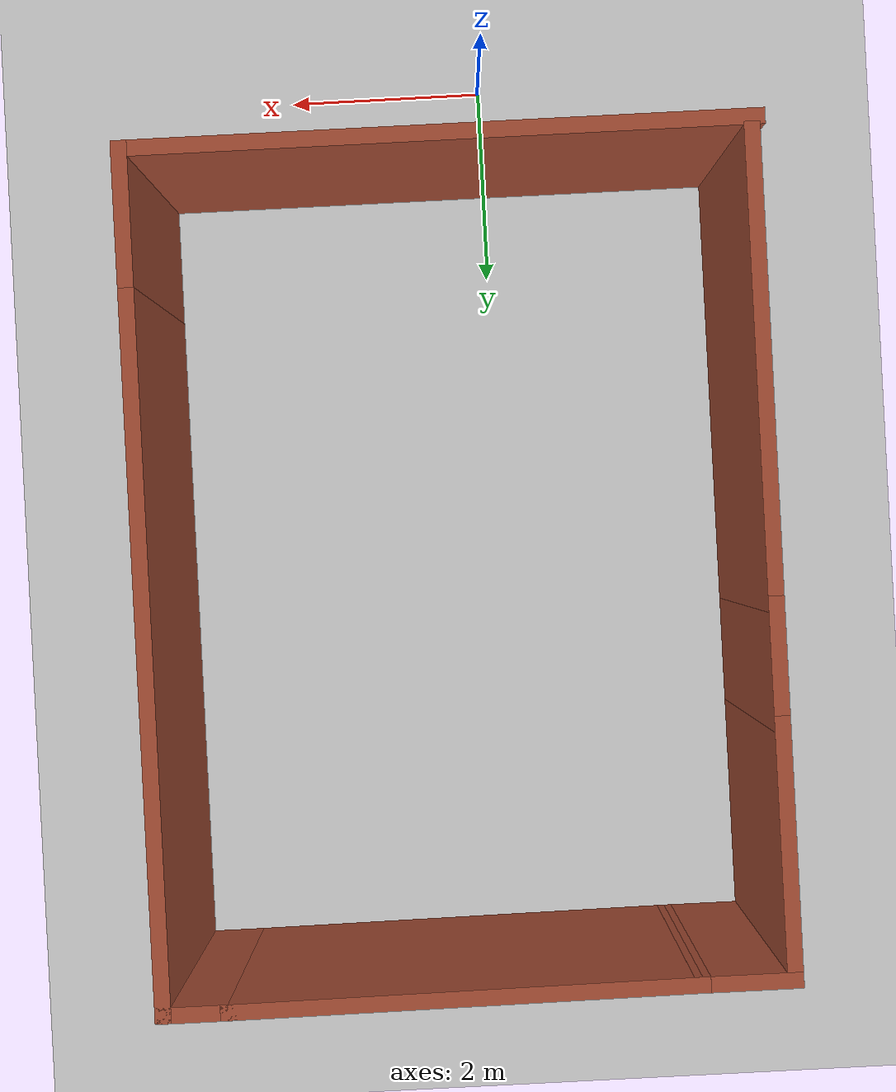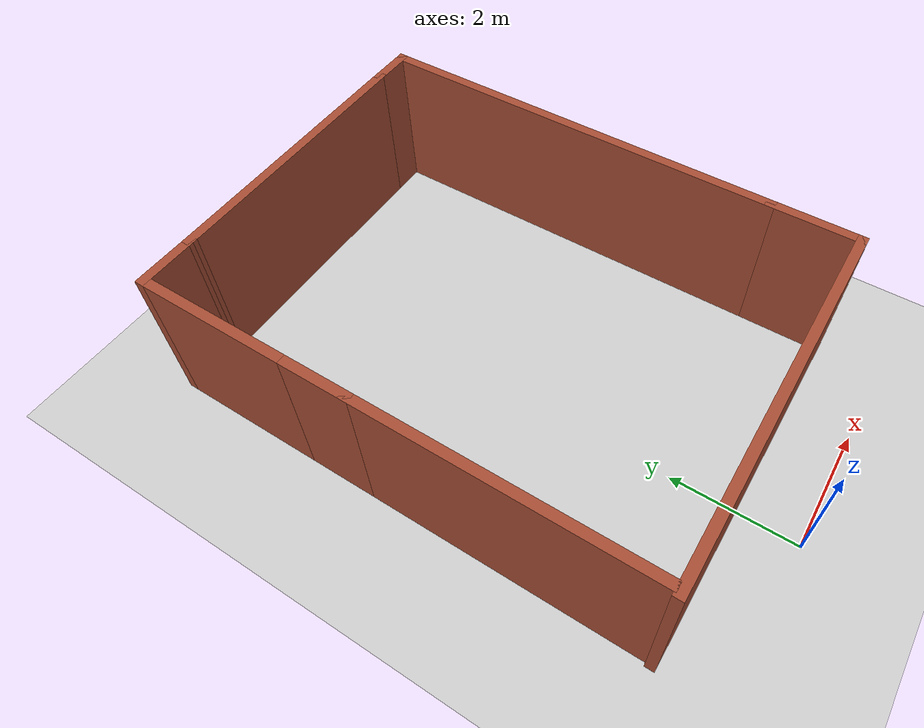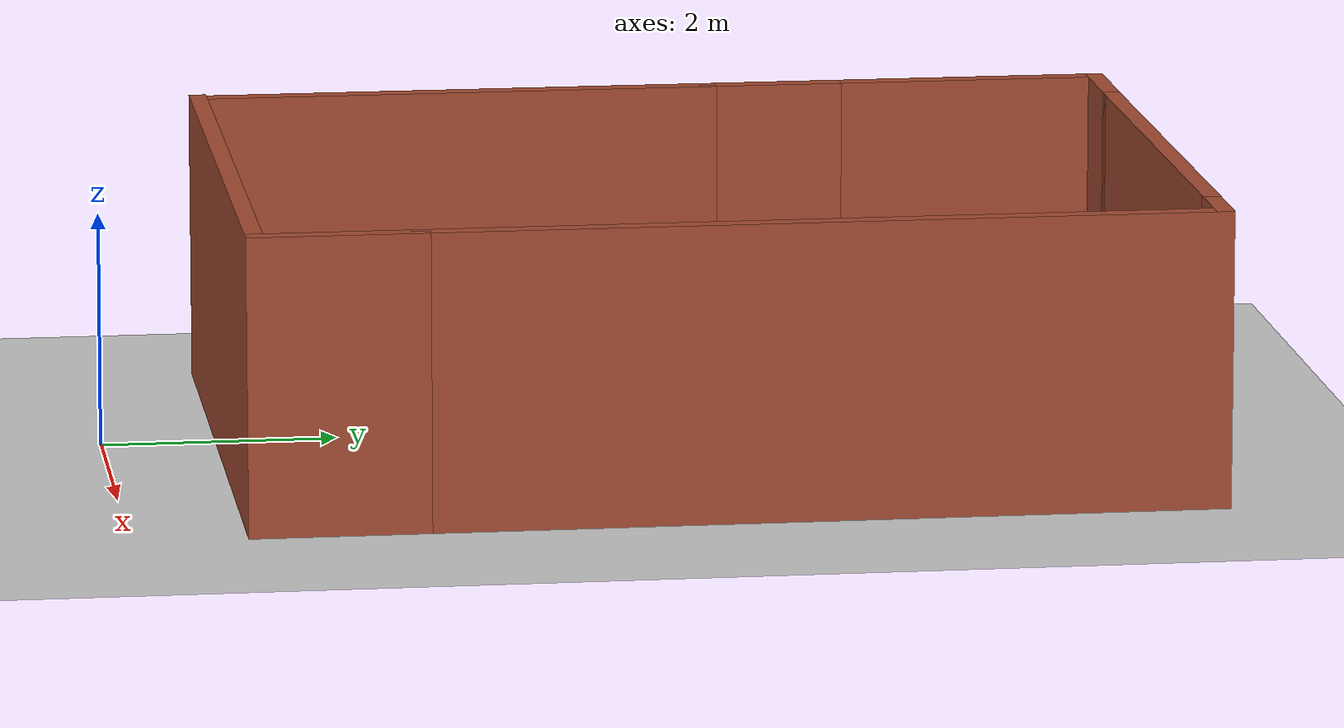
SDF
<sdf version="1.7">
 <world name="default">
  <light name="sun" type="directional">
   <pose>0 0 10 0 -0 0</pose>
   <diffuse>0.8 0.8 0.8 1</diffuse>
   <specular>0.2 0.2 0.2 1</specular>
   <attenuation>
    <range>1000</range>
    <constant>0.9</constant>
    <linear>0.01</linear>
    <quadratic>0.001</quadratic>
   </attenuation>
   <direction>-0.5 0.1 -0.9</direction>
   <spot><inner_angle>0</inner_angle><outer_angle>0</outer_angle><falloff>0</falloff></spot>
  </light>
  <model name="ground_plane">
   <static>1</static>
   <link name="link">
    <collision name="collision">
     <geometry><plane><normal>0 0 1</normal><size>100 100</size></plane></geometry>
     <surface>
      <contact><collide_bitmask>65535</collide_bitmask></contact>
      <friction><ode><mu>100</mu><mu2>50</mu2></ode></friction>
     </surface>
    </collision>
    <visual name="visual">
     <cast_shadows>0</cast_shadows>
     <geometry><plane><normal>0 0 1</normal><size>100 100</size></plane></geometry>
     <material>
      <script><uri>file://media/materials/scripts/gazebo.material</uri><name>Gazebo/Grey</name></script>
     </material>
    </visual>
   </link>
  </model>
  <gravity>0 0 -9.8</gravity>
  <magnetic_field>6e-06 2.3e-05 -4.2e-05</magnetic_field>
  <atmosphere type="adiabatic"/>
  <physics type="ode">
   <max_step_size>0.001</max_step_size>
   <real_time_factor>1</real_time_factor>
   <real_time_update_rate>1000</real_time_update_rate>
  </physics>
  <scene><ambient>0.4 0.4 0.4 1</ambient><background>0.7 0.7 0.7 1</background><shadows>1</shadows></scene>
  <spherical_coordinates>
   <surface_model>EARTH_WGS84</surface_model>
   <latitude_deg>0</latitude_deg>
   <longitude_deg>0</longitude_deg>
   <elevation>0</elevation>
   <heading_deg>0</heading_deg>
  </spherical_coordinates>
  <model name="wall_following_world">
   <pose>0.914895 5.01422 0 0 -0 0</pose>
   <link name="Wall_12">
    <collision name="Wall_12_Collision">
     <geometry><box><size>4.5 0.15 2.5</size></box></geometry>
     <pose>0 0 1.25 0 -0 0</pose>
    </collision>
    <visual name="Wall_12_Visual">
     <pose>0 0 1.25 0 -0 0</pose>
     <geometry><box><size>4.5 0.15 2.5</size></box></geometry>
     <material>
      <script><uri>file://media/materials/scripts/gazebo.material</uri><name>Gazebo/Bricks</name></script>
      <ambient>1 1 1 1</ambient>
     </material>
     <meta><layer>0</layer></meta>
    </visual>
    <pose>-0.310225 3.95953 0 0 -0 -3.1346</pose>
   </link>
   <link name="Wall_13">
    <collision name="Wall_13_Collision">
     <geometry><box><size>1 0.15 2.5</size></box></geometry>
     <pose>0 0 1.25 0 -0 0</pose>
    </collision>
    <visual name="Wall_13_Visual">
     <pose>0 0 1.25 0 -0 0</pose>
     <geometry><box><size>1 0.15 2.5</size></box></geometry>
     <material>
      <script><uri>file://media/materials/scripts/gazebo.material</uri><name>Gazebo/Bricks</name></script>
      <ambient>1 1 1 1</ambient>
     </material>
     <meta><layer>0</layer></meta>
    </visual>
    <pose>-2.91022 3.94432 0 0 -0 3.14159</pose>
   </link>
   <link name="Wall_14">
    <collision name="Wall_14_Collision">
     <geometry><box><size>2.5 0.15 2.5</size></box></geometry>
     <pose>0 0 1.25 0 -0 0</pose>
    </collision>
    <visual name="Wall_14_Visual">
     <pose>0 0 1.25 0 -0 0</pose>
     <geometry><box><size>2.5 0.15 2.5</size></box></geometry>
     <material>
      <script><uri>file://media/materials/scripts/gazebo.material</uri><name>Gazebo/Bricks</name></script>
      <ambient>1 1 1 1</ambient>
     </material>
     <meta><layer>0</layer></meta>
    </visual>
    <pose>-3.33522 2.76932 0 0 -0 -1.5708</pose>
   </link>
   <link name="Wall_15">
    <collision name="Wall_15_Collision">
     <geometry><box><size>1.25 0.15 2.5</size></box></geometry>
     <pose>0 0 1.25 0 -0 0</pose>
    </collision>
    <visual name="Wall_15_Visual">
     <pose>0 0 1.25 0 -0 0</pose>
     <geometry><box><size>1.25 0.15 2.5</size></box></geometry>
     <material>
      <script><uri>file://media/materials/scripts/gazebo.material</uri><name>Gazebo/Bricks</name></script>
      <ambient>1 1 1 1</ambient>
     </material>
     <meta><layer>0</layer></meta>
    </visual>
    <pose>-3.33522 1.04432 0 0 -0 -1.5708</pose>
   </link>
   <link name="Wall_17">
    <collision name="Wall_17_Collision">
     <geometry><box><size>4.5 0.15 2.5</size></box></geometry>
     <pose>0 0 1.25 0 -0 0</pose>
    </collision>
    <visual name="Wall_17_Visual">
     <pose>0 0 1.25 0 -0 0</pose>
     <geometry><box><size>4.5 0.15 2.5</size></box></geometry>
     <material>
      <script><uri>file://media/materials/scripts/gazebo.material</uri><name>Gazebo/Bricks</name></script>
      <ambient>1 1 1 1</ambient>
     </material>
     <meta><layer>0</layer></meta>
    </visual>
    <pose>-3.33522 -1.68068 0 0 -0 -1.5708</pose>
   </link>
   <link name="Wall_20">
    <collision name="Wall_20_Collision">
     <geometry><box><size>0.75 0.15 2.5</size></box></geometry>
     <pose>0 0 1.25 0 -0 0</pose>
    </collision>
    <visual name="Wall_20_Visual">
     <pose>0 0 1.25 0 -0 0</pose>
     <geometry><box><size>0.75 0.15 2.5</size></box></geometry>
     <material>
      <script><uri>file://media/materials/scripts/gazebo.material</uri><name>Gazebo/Bricks</name></script>
      <ambient>1 1 1 1</ambient>
     </material>
     <meta><layer>0</layer></meta>
    </visual>
    <pose>2.16478 3.97474 0 0 -0 0</pose>
   </link>
   <link name="Wall_21">
    <collision name="Wall_21_Collision">
     <geometry><box><size>6.75 0.15 2.5</size></box></geometry>
     <pose>0 0 1.25 0 -0 0</pose>
    </collision>
    <visual name="Wall_21_Visual">
     <pose>0 0 1.25 0 -0 0</pose>
     <geometry><box><size>6.75 0.15 2.5</size></box></geometry>
     <material>
      <script><uri>file://media/materials/scripts/gazebo.material</uri><name>Gazebo/Bricks</name></script>
      <ambient>1 1 1 1</ambient>
     </material>
     <meta><layer>0</layer></meta>
    </visual>
    <pose>2.46478 0.674739 0 0 -0 -1.5708</pose>
   </link>
   <link name="Wall_40">
    <collision name="Wall_40_Collision">
     <geometry><box><size>1.5 0.15 2.5</size></box></geometry>
     <pose>0 0 1.25 0 -0 0</pose>
    </collision>
    <visual name="Wall_40_Visual">
     <pose>0 0 1.25 0 -0 0</pose>
     <geometry><box><size>1.5 0.15 2.5</size></box></geometry>
     <material>
      <script><uri>file://media/materials/scripts/gazebo.material</uri><name>Gazebo/Bricks</name></script>
      <ambient>1 1 1 1</ambient>
     </material>
     <meta><layer>0</layer></meta>
    </visual>
    <pose>2.46478 -3.30026 0 0 -0 -1.5708</pose>
   </link>
   <link name="Wall_41">
    <collision name="Wall_41_Collision">
     <geometry><box><size>6 0.15 2.5</size></box></geometry>
     <pose>0 0 1.25 0 -0 0</pose>
    </collision>
    <visual name="Wall_41_Visual">
     <pose>0 0 1.25 0 -0 0</pose>
     <geometry><box><size>6 0.15 2.5</size></box></geometry>
     <material>
      <script><uri>file://media/materials/scripts/gazebo.material</uri><name>Gazebo/Bricks</name></script>
      <ambient>1 1 1 1</ambient>
     </material>
     <meta><layer>0</layer></meta>
    </visual>
    <pose>-0.460224 -3.97526 0 0 -0 3.14159</pose>
   </link>
   <static>1</static>
  </model>
 </world>
</sdf>
